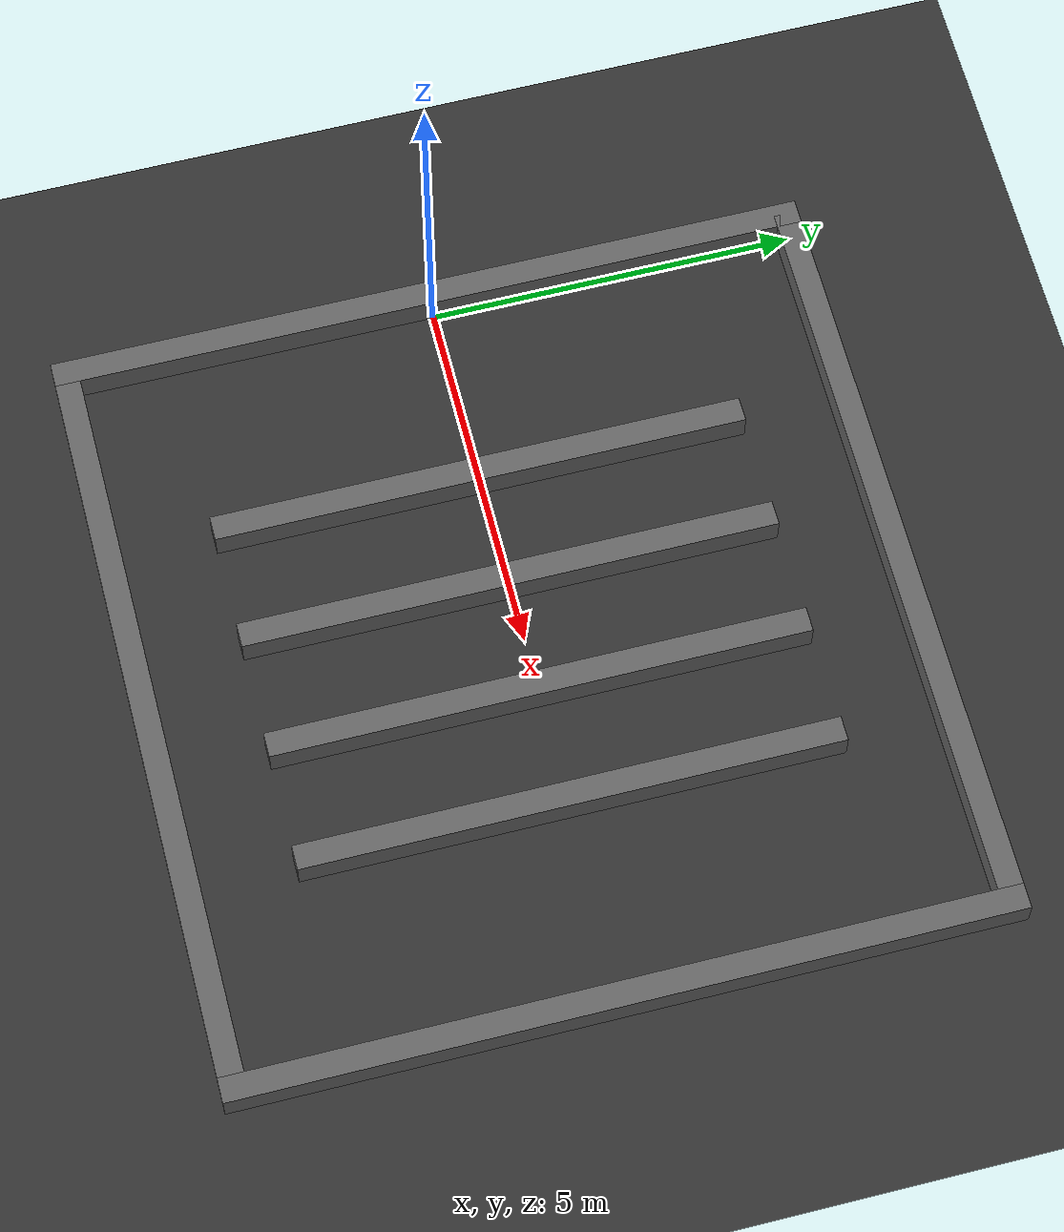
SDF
<sdf version="1.6">
 <world name="default">
  <include><uri>model://sun</uri><pose>12 0 20 0 0 0</pose></include>
  <include><uri>model://mini_logistics</uri></include>
 </world>
</sdf>

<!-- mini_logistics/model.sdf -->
<sdf version="1.6">
<model name='mini_logistics'>
  <static>true</static>
  <pose>0 0 0 0 0 0</pose>
  <link name='link'>
    <collision name='collision'>
      <geometry>
        <plane>
          <normal>0 0 1</normal>
          <size>1000 1000</size>
        </plane>
      </geometry>
      <surface>
        <friction>
          <ode>
            <mu>0.9</mu>
            <mu2>0.6</mu2>
            <fdir1>0 0 0</fdir1>
            <slip1>0</slip1>
            <slip2>0</slip2>
          </ode>
        </friction>
      </surface>
    </collision>

    <visual name='visual'>
      <cast_shadows>0</cast_shadows>
      <geometry>
        <plane>
          <normal>0 0 1</normal>
          <size>1000 1000</size>
        </plane>
      </geometry>
      <material>
        <ambient>0.2 0.2 0.2 0.0</ambient>
        <diffuse>0.2 0.2 0.2 0.0</diffuse>
        <specular>0 0 0 0</specular>
        <emissive>0 0 0 1</emissive>
      </material>
    </visual>
    <self_collide>0</self_collide>
    <enable_wind>0</enable_wind>
    <kinematic>0</kinematic>
  </link>

  <link name="wall_wall_0">
    <pose>-0.17 0.00 0.20 0 0 0</pose>
    <collision>
      <geometry>
        <box>
          <size>0.34 10.34 0.40</size>
        </box>
      </geometry>
    </collision>
    <visual>
      <geometry>
        <box>
          <size>0.34 10.34 0.40</size>
        </box>
      </geometry>
      <material>
        <ambient>0.4 0.4 0.4 1.0</ambient>
        <diffuse>0.4 0.4 0.4 1.0</diffuse>
        <specular>0 0 0 0</specular>
        <emissive>0 0 0 1</emissive>
      </material>
    </visual>
    <self_collide>0</self_collide>
    <enable_wind>0</enable_wind>
    <kinematic>0</kinematic>
  </link>
  <link name="wall_wall_1">
    <pose>10.17 0.00 0.20 0 0 0</pose>
    <collision>
      <geometry>
        <box>
          <size>0.34 10.34 0.40</size>
        </box>
      </geometry>
    </collision>
    <visual>
      <geometry>
        <box>
          <size>0.34 10.34 0.40</size>
        </box>
      </geometry>
      <material>
        <ambient>0.4 0.4 0.4 1.0</ambient>
        <diffuse>0.4 0.4 0.4 1.0</diffuse>
        <specular>0 0 0 0</specular>
        <emissive>0 0 0 1</emissive>
      </material>
    </visual>
    <self_collide>0</self_collide>
    <enable_wind>0</enable_wind>
    <kinematic>0</kinematic>
  </link>
  <link name="wall_wall_2">
    <pose>5.00 5.00 0.20 0 0 0</pose>
    <collision>
      <geometry>
        <box>
          <size>10.34 0.34 0.40</size>
        </box>
      </geometry>
    </collision>
    <visual>
      <geometry>
        <box>
          <size>10.34 0.34 0.40</size>
        </box>
      </geometry>
      <material>
        <ambient>0.4 0.4 0.4 1.0</ambient>
        <diffuse>0.4 0.4 0.4 1.0</diffuse>
        <specular>0 0 0 0</specular>
        <emissive>0 0 0 1</emissive>
      </material>
    </visual>
    <self_collide>0</self_collide>
    <enable_wind>0</enable_wind>
    <kinematic>0</kinematic>
  </link>
  <link name="wall_wall_3">
    <pose>5.00 -5.00 0.20 0 0 0</pose>
    <collision>
      <geometry>
        <box>
          <size>10.34 0.34 0.40</size>
        </box>
      </geometry>
    </collision>
    <visual>
      <geometry>
        <box>
          <size>10.34 0.34 0.40</size>
        </box>
      </geometry>
      <material>
        <ambient>0.4 0.4 0.4 1.0</ambient>
        <diffuse>0.4 0.4 0.4 1.0</diffuse>
        <specular>0 0 0 0</specular>
        <emissive>0 0 0 1</emissive>
      </material>
    </visual>
    <self_collide>0</self_collide>
    <enable_wind>0</enable_wind>
    <kinematic>0</kinematic>
  </link>
  <link name="wall_shelf_0">
    <pose>2.60 0.00 0.20 0 0 0</pose>
    <collision>
      <geometry>
        <box>
          <size>0.34 7.20 0.40</size>
        </box>
      </geometry>
    </collision>
    <visual>
      <geometry>
        <box>
          <size>0.34 7.20 0.40</size>
        </box>
      </geometry>
      <material>
        <ambient>0.4 0.4 0.4 1.0</ambient>
        <diffuse>0.4 0.4 0.4 1.0</diffuse>
        <specular>0 0 0 0</specular>
        <emissive>0 0 0 1</emissive>
      </material>
    </visual>
    <self_collide>0</self_collide>
    <enable_wind>0</enable_wind>
    <kinematic>0</kinematic>
  </link>
  <link name="wall_shelf_1">
    <pose>4.20 0.00 0.20 0 0 0</pose>
    <collision>
      <geometry>
        <box>
          <size>0.34 7.20 0.40</size>
        </box>
      </geometry>
    </collision>
    <visual>
      <geometry>
        <box>
          <size>0.34 7.20 0.40</size>
        </box>
      </geometry>
      <material>
        <ambient>0.4 0.4 0.4 1.0</ambient>
        <diffuse>0.4 0.4 0.4 1.0</diffuse>
        <specular>0 0 0 0</specular>
        <emissive>0 0 0 1</emissive>
      </material>
    </visual>
    <self_collide>0</self_collide>
    <enable_wind>0</enable_wind>
    <kinematic>0</kinematic>
  </link>
  <link name="wall_shelf_2">
    <pose>5.80 0.00 0.20 0 0 0</pose>
    <collision>
      <geometry>
        <box>
          <size>0.34 7.20 0.40</size>
        </box>
      </geometry>
    </collision>
    <visual>
      <geometry>
        <box>
          <size>0.34 7.20 0.40</size>
        </box>
      </geometry>
      <material>
        <ambient>0.4 0.4 0.4 1.0</ambient>
        <diffuse>0.4 0.4 0.4 1.0</diffuse>
        <specular>0 0 0 0</specular>
        <emissive>0 0 0 1</emissive>
      </material>
    </visual>
    <self_collide>0</self_collide>
    <enable_wind>0</enable_wind>
    <kinematic>0</kinematic>
  </link>
  <link name="wall_shelf_3">
    <pose>7.40 0.00 0.20 0 0 0</pose>
    <collision>
      <geometry>
        <box>
          <size>0.34 7.20 0.40</size>
        </box>
      </geometry>
    </collision>
    <visual>
      <geometry>
        <box>
          <size>0.34 7.20 0.40</size>
        </box>
      </geometry>
      <material>
        <ambient>0.4 0.4 0.4 1.0</ambient>
        <diffuse>0.4 0.4 0.4 1.0</diffuse>
        <specular>0 0 0 0</specular>
        <emissive>0 0 0 1</emissive>
      </material>
    </visual>
    <self_collide>0</self_collide>
    <enable_wind>0</enable_wind>
    <kinematic>0</kinematic>
  </link>
</model>
</sdf>
